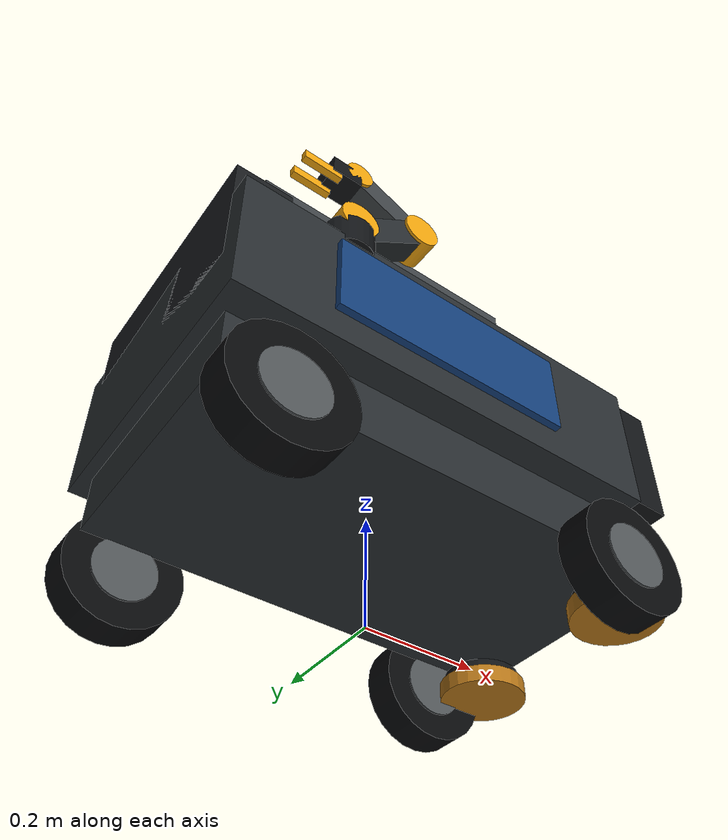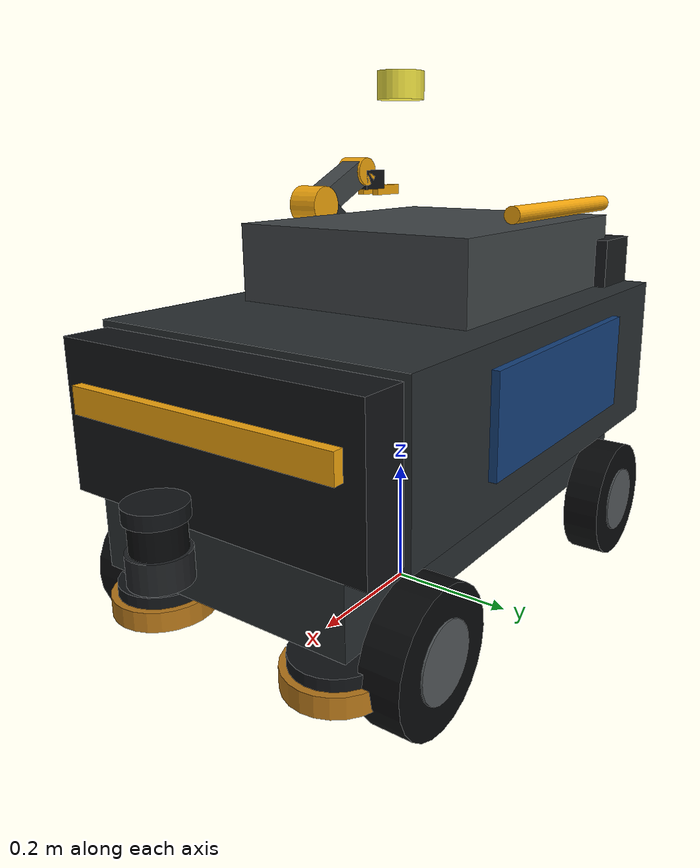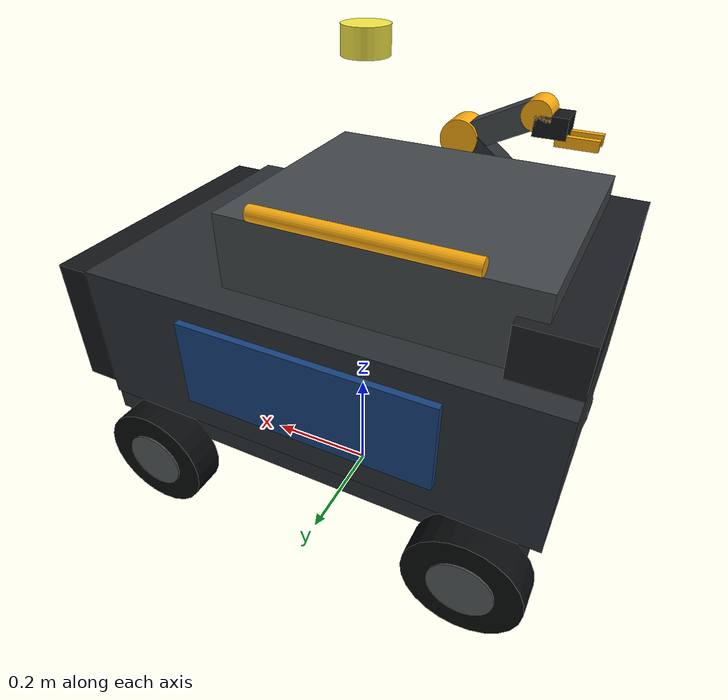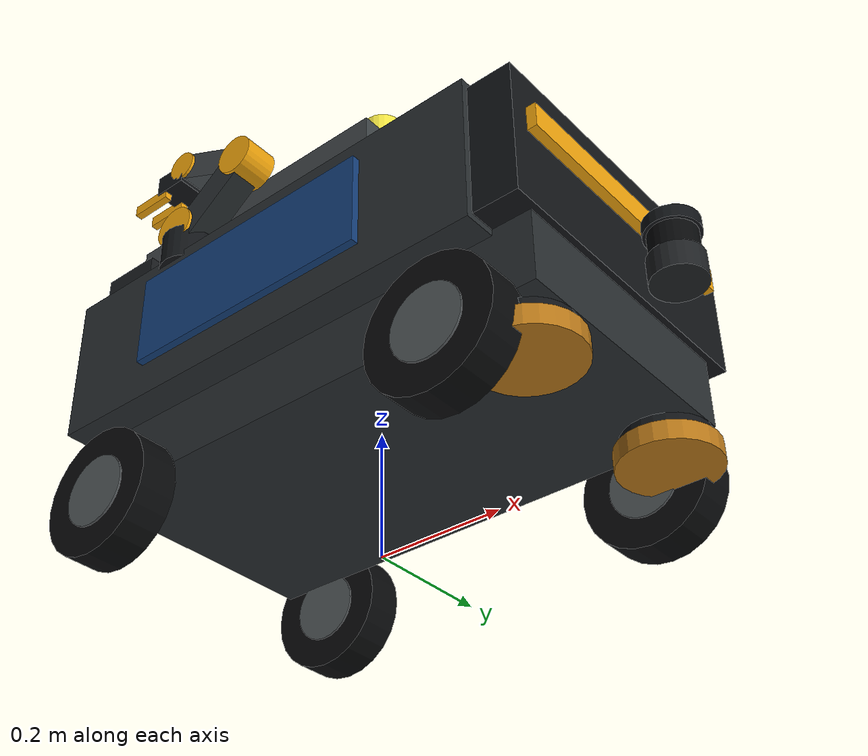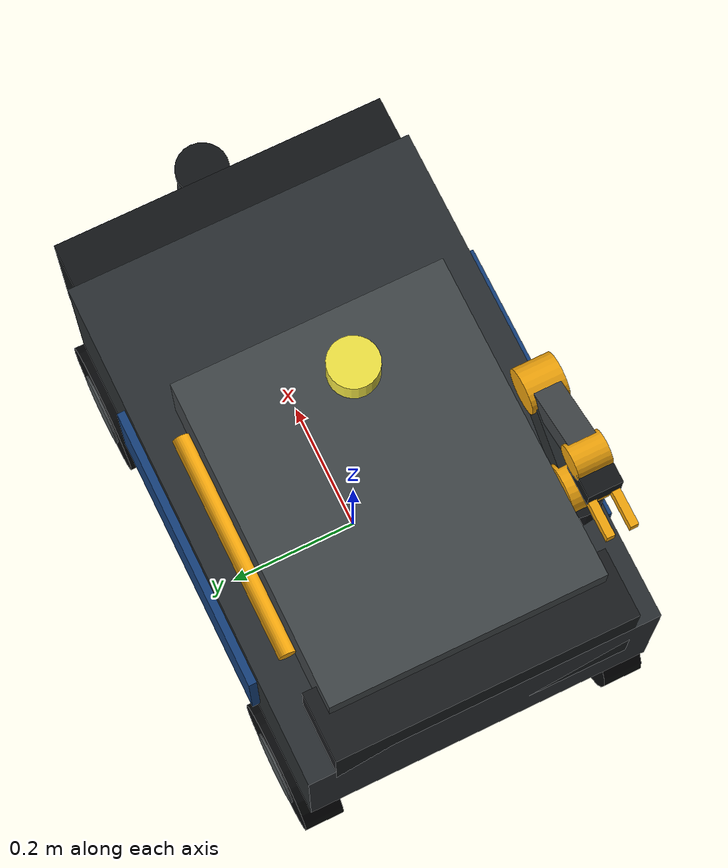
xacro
<?xml version="1.0"?>
<robot xmlns:xacro="http://www.ros.org/wiki/xacro" name="cleannav_ackermann">
  <xacro:arg name="controllers_file" default="config/ackermann_controllers.yaml"/>
  <xacro:arg name="cmd_vel_topic" default="/cmd_vel"/>

  <!-- Simulation-only sensor A/B overrides; defaults preserve the frozen sensor. -->
  <xacro:arg name="sim_lidar_samples" default="181"/>
  <xacro:arg name="sim_lidar_rate" default="8"/>

  <!-- SIMULATION_PLACEHOLDER — replace after real chassis measurement. -->
  <!-- 控制器 YAML 中的五项几何参数必须与本区同名属性保持一致。 -->
  <xacro:property name="wheelbase" value="0.60"/>
  <xacro:property name="front_wheel_track" value="0.48"/>
  <xacro:property name="rear_wheel_track" value="0.48"/>
  <xacro:property name="front_wheel_radius" value="0.10"/>
  <xacro:property name="rear_wheel_radius" value="0.10"/>
  <xacro:property name="wheel_width" value="0.06"/>
  <xacro:property name="chassis_length" value="0.85"/>
  <xacro:property name="chassis_width" value="0.42"/>
  <xacro:property name="chassis_height" value="0.18"/>
  <xacro:property name="chassis_z" value="0.22"/>
  <xacro:property name="chassis_mass" value="20.0"/>
  <xacro:property name="wheel_mass" value="1.0"/>
  <xacro:property name="steering_limit" value="0.60"/>
  <!-- SIMULATION_PLACEHOLDER — replace after real chassis/sensor measurement. -->
  <xacro:property name="base_scan_x" value="0.50"/>
  <xacro:property name="base_scan_y" value="0.0"/>
  <xacro:property name="base_scan_z" value="0.28"/>
  <xacro:property name="lidar_radius" value="0.035"/>
  <xacro:property name="lidar_height" value="0.04"/>

  <link name="base_footprint"/>

  <link name="base_link">
    <!-- All colors are inline so each visual keeps its own Gazebo color. -->
    <visual name="cleaner_lower_chassis">
      <origin xyz="0.02 0 ${chassis_z}" rpy="0 0 0"/>
      <geometry>
        <box size="0.80 0.42 0.16"/>
      </geometry>
      <material name="cleaner_lower_chassis_material">
        <color rgba="0.16 0.18 0.19 1.0"/>
      </material>
    </visual>
    <!-- Demo-only industrial body envelope; visuals have no collision. -->
    <visual name="cleaner_main_body_shell">
      <origin xyz="-0.02 0.00 0.36" rpy="0 0 0"/>
      <geometry>
        <box size="0.76 0.52 0.24"/>
      </geometry>
      <material name="cleaner_main_body_material">
        <color rgba="0.16 0.18 0.19 1.0"/>
      </material>
    </visual>
    <visual name="cleaner_upper_equipment_compartment">
      <origin xyz="-0.10 0.00 0.51" rpy="0 0 0"/>
      <geometry>
        <box size="0.48 0.40 0.18"/>
      </geometry>
      <material name="cleaner_equipment_material">
        <color rgba="0.25 0.27 0.28 1.0"/>
      </material>
    </visual>
    <visual name="cleaner_rear_service_cap">
      <origin xyz="-0.35 0.00 0.45" rpy="0 0 0"/>
      <geometry>
        <box size="0.10 0.44 0.22"/>
      </geometry>
      <material name="cleaner_rear_service_cap_material">
        <color rgba="0.10 0.11 0.12 1.0"/>
      </material>
    </visual>
    <visual name="cleaner_front_fascia">
      <origin xyz="0.39 0.00 0.36" rpy="0 0 0"/>
      <geometry>
        <box size="0.08 0.50 0.22"/>
      </geometry>
      <material name="cleaner_front_fascia_material">
        <color rgba="0.07 0.08 0.09 1.0"/>
      </material>
    </visual>
    <visual name="cleaner_side_panel_left">
      <origin xyz="-0.03 0.266 0.37" rpy="0 0 0"/>
      <geometry>
        <box size="0.42 0.012 0.15"/>
      </geometry>
      <material name="cleaner_side_panel_left_material">
        <color rgba="0.08 0.25 0.48 1.0"/>
      </material>
    </visual>
    <visual name="cleaner_side_panel_right">
      <origin xyz="-0.03 -0.266 0.37" rpy="0 0 0"/>
      <geometry>
        <box size="0.42 0.012 0.15"/>
      </geometry>
      <material name="cleaner_side_panel_right_material">
        <color rgba="0.08 0.25 0.48 1.0"/>
      </material>
    </visual>
    <visual name="cleaner_front_safety_strip">
      <origin xyz="0.435 0.00 0.39" rpy="0 0 0"/>
      <geometry>
        <box size="0.02 0.44 0.04"/>
      </geometry>
      <material name="cleaner_front_safety_strip_material">
        <color rgba="0.95 0.65 0.05 1.0"/>
      </material>
    </visual>
    <visual name="cleaner_safety_rail_left">
      <origin xyz="-0.10 0.22 0.625" rpy="0 ${pi / 2} 0"/>
      <geometry>
        <cylinder radius="0.012" length="0.32"/>
      </geometry>
      <material name="cleaner_safety_rail_left_material">
        <color rgba="0.95 0.65 0.05 1.0"/>
      </material>
    </visual>
    <!-- Housing follows the immutable base_scan pose at (0.50, 0, 0.28). -->
    <visual name="cleaner_lidar_pedestal">
      <origin xyz="0.50 0.00 0.24" rpy="0 0 0"/>
      <geometry>
        <cylinder radius="0.040" length="0.040"/>
      </geometry>
      <material name="cleaner_lidar_pedestal_material">
        <color rgba="0.12 0.13 0.14 1.0"/>
      </material>
    </visual>
    <visual name="cleaner_lidar_top_cap">
      <origin xyz="0.50 0.00 0.31" rpy="0 0 0"/>
      <geometry>
        <cylinder radius="0.040" length="0.020"/>
      </geometry>
      <material name="cleaner_lidar_top_cap_material">
        <color rgba="0.07 0.08 0.09 1.0"/>
      </material>
    </visual>
    <visual name="cleaner_front_brush_left">
      <origin xyz="0.37 0.16 0.105" rpy="0 0 0"/>
      <geometry>
        <cylinder radius="0.065" length="0.025"/>
      </geometry>
      <material name="cleaner_front_brush_left_material">
        <color rgba="0.07 0.08 0.09 1.0"/>
      </material>
    </visual>
    <visual name="cleaner_front_brush_right">
      <origin xyz="0.37 -0.16 0.105" rpy="0 0 0"/>
      <geometry>
        <cylinder radius="0.065" length="0.025"/>
      </geometry>
      <material name="cleaner_front_brush_right_material">
        <color rgba="0.07 0.08 0.09 1.0"/>
      </material>
    </visual>
    <visual name="cleaner_front_bristles_left">
      <origin xyz="0.37 0.16 0.085" rpy="0 0 0"/>
      <geometry>
        <cylinder radius="0.075" length="0.030"/>
      </geometry>
      <material name="cleaner_front_bristles_left_material">
        <color rgba="0.72 0.47 0.10 1.0"/>
      </material>
    </visual>
    <visual name="cleaner_front_bristles_right">
      <origin xyz="0.37 -0.16 0.085" rpy="0 0 0"/>
      <geometry>
        <cylinder radius="0.075" length="0.030"/>
      </geometry>
      <material name="cleaner_front_bristles_right_material">
        <color rgba="0.72 0.47 0.10 1.0"/>
      </material>
    </visual>
    <!-- Folded visual-only industrial gripper arm on the right side. -->
    <visual name="cleaner_arm_base_pedestal">
      <origin xyz="-0.20 -0.225 0.50" rpy="0 0 0"/>
      <geometry>
        <cylinder radius="0.045" length="0.060"/>
      </geometry>
      <material name="cleaner_arm_base_material">
        <color rgba="0.07 0.08 0.09 1.0"/>
      </material>
    </visual>
    <visual name="cleaner_arm_shoulder_joint">
      <origin xyz="-0.20 -0.235 0.54" rpy="${pi / 2} 0 0"/>
      <geometry>
        <cylinder radius="0.035" length="0.055"/>
      </geometry>
      <material name="cleaner_arm_shoulder_material">
        <color rgba="0.95 0.65 0.05 1.0"/>
      </material>
    </visual>
    <visual name="cleaner_arm_upper_arm">
      <origin xyz="-0.14 -0.235 0.565" rpy="0 -0.65 0"/>
      <geometry>
        <box size="0.16 0.045 0.050"/>
      </geometry>
      <material name="cleaner_arm_upper_material">
        <color rgba="0.16 0.18 0.19 1.0"/>
      </material>
    </visual>
    <visual name="cleaner_arm_elbow_joint">
      <origin xyz="-0.075 -0.235 0.615" rpy="${pi / 2} 0 0"/>
      <geometry>
        <cylinder radius="0.033" length="0.055"/>
      </geometry>
      <material name="cleaner_arm_elbow_material">
        <color rgba="0.95 0.65 0.05 1.0"/>
      </material>
    </visual>
    <visual name="cleaner_arm_forearm">
      <origin xyz="-0.135 -0.235 0.64" rpy="0 0.45 0"/>
      <geometry>
        <box size="0.14 0.040 0.045"/>
      </geometry>
      <material name="cleaner_arm_forearm_material">
        <color rgba="0.25 0.27 0.28 1.0"/>
      </material>
    </visual>
    <visual name="cleaner_arm_wrist">
      <origin xyz="-0.20 -0.235 0.67" rpy="${pi / 2} 0 0"/>
      <geometry>
        <cylinder radius="0.025" length="0.050"/>
      </geometry>
      <material name="cleaner_arm_wrist_material">
        <color rgba="0.95 0.65 0.05 1.0"/>
      </material>
    </visual>
    <visual name="cleaner_arm_gripper_palm">
      <origin xyz="-0.225 -0.235 0.655" rpy="0 0 0"/>
      <geometry>
        <box size="0.055 0.050 0.035"/>
      </geometry>
      <material name="cleaner_arm_gripper_palm_material">
        <color rgba="0.07 0.08 0.09 1.0"/>
      </material>
    </visual>
    <visual name="cleaner_arm_gripper_finger_left">
      <origin xyz="-0.270 -0.252 0.635" rpy="0 0 0"/>
      <geometry>
        <box size="0.070 0.012 0.018"/>
      </geometry>
      <material name="cleaner_arm_gripper_finger_left_material">
        <color rgba="0.95 0.65 0.05 1.0"/>
      </material>
    </visual>
    <visual name="cleaner_arm_gripper_finger_right">
      <origin xyz="-0.270 -0.218 0.635" rpy="0 0 0"/>
      <geometry>
        <box size="0.070 0.012 0.018"/>
      </geometry>
      <material name="cleaner_arm_gripper_finger_right_material">
        <color rgba="0.95 0.65 0.05 1.0"/>
      </material>
    </visual>
    <collision>
      <origin xyz="0 0 ${chassis_z}" rpy="0 0 0"/>
      <geometry>
        <box size="${chassis_length} ${chassis_width} ${chassis_height}"/>
      </geometry>
    </collision>
    <inertial>
      <origin xyz="0 0 ${chassis_z}" rpy="0 0 0"/>
      <mass value="${chassis_mass}"/>
      <inertia ixx="0.348" ixy="0" ixz="0" iyy="1.258" iyz="0" izz="1.498"/>
    </inertial>
  </link>

  <joint name="base_footprint_to_base_link" type="fixed">
    <parent link="base_footprint"/>
    <child link="base_link"/>
  </joint>

  <!-- SIMULATION_PLACEHOLDER — replace after real chassis/sensor measurement. -->
  <!-- 该位姿仅用于 V1 仿真，不代表真实 LiDAR 安装位置。 -->
  <link name="base_scan">
    <visual name="cleannav_lidar_sensor">
      <geometry>
        <cylinder radius="${lidar_radius}" length="${lidar_height}"/>
      </geometry>
      <material name="cleannav_lidar_sensor_material">
        <color rgba="0.03 0.035 0.04 1.0"/>
      </material>
    </visual>
    <collision>
      <geometry>
        <cylinder radius="${lidar_radius}" length="${lidar_height}"/>
      </geometry>
    </collision>
    <inertial>
      <mass value="0.10"/>
      <inertia ixx="0.00004" ixy="0" ixz="0" iyy="0.00004" iyz="0" izz="0.00006"/>
    </inertial>
  </link>

  <joint name="base_link_to_base_scan" type="fixed">
    <origin xyz="${base_scan_x} ${base_scan_y} ${base_scan_z}" rpy="0 0 0"/>
    <parent link="base_link"/>
    <child link="base_scan"/>
  </joint>

  <!-- Independent roof-mounted scan for mapping; the front /scan is unchanged. -->
  <link name="mapping_lidar_link">
    <inertial>
      <mass value="0.10"/>
      <inertia ixx="0.0001" ixy="0" ixz="0" iyy="0.0001" iyz="0" izz="0.0001"/>
    </inertial>
    <visual>
      <geometry><cylinder radius="0.035" length="0.04"/></geometry>
    </visual>
    <collision>
      <geometry><cylinder radius="0.035" length="0.04"/></geometry>
    </collision>
  </link>
  <joint name="mapping_lidar_mount" type="fixed">
    <parent link="base_link"/>
    <child link="mapping_lidar_link"/>
    <origin xyz="0 0 0.80" rpy="0 0 0"/>
  </joint>

  <xacro:macro name="wheel_link" params="name radius">
    <link name="${name}">
      <visual name="${name}_tire">
        <origin xyz="0 0 0" rpy="${pi / 2} 0 0"/>
        <geometry>
          <cylinder radius="${radius}" length="${wheel_width}"/>
        </geometry>
        <material name="${name}_tire_material">
          <color rgba="0.035 0.040 0.045 1.0"/>
        </material>
      </visual>
      <visual name="${name}_hub">
        <origin xyz="0 0 0" rpy="${pi / 2} 0 0"/>
        <geometry>
          <cylinder radius="0.055" length="0.066"/>
        </geometry>
        <material name="${name}_hub_material">
          <color rgba="0.32 0.34 0.35 1.0"/>
        </material>
      </visual>
      <collision>
        <origin xyz="0 0 0" rpy="${pi / 2} 0 0"/>
        <geometry>
          <cylinder radius="${radius}" length="${wheel_width}"/>
        </geometry>
      </collision>
      <inertial>
        <mass value="${wheel_mass}"/>
        <inertia ixx="0.0028" ixy="0" ixz="0" iyy="0.005" iyz="0" izz="0.0028"/>
      </inertial>
    </link>
  </xacro:macro>

  <xacro:wheel_link name="front_left_wheel_link" radius="${front_wheel_radius}"/>
  <xacro:wheel_link name="front_right_wheel_link" radius="${front_wheel_radius}"/>
  <xacro:wheel_link name="rear_left_wheel_link" radius="${rear_wheel_radius}"/>
  <xacro:wheel_link name="rear_right_wheel_link" radius="${rear_wheel_radius}"/>

  <!-- SIMULATION_PLACEHOLDER — replace after real chassis measurement. -->
  <!-- 转向节仅承载前轮转向与被动滚动两级关节，不代表实车结构尺寸。 -->
  <xacro:macro name="steering_knuckle_link" params="name">
    <link name="${name}">
      <inertial>
        <mass value="0.05"/>
        <inertia ixx="0.00001" ixy="0" ixz="0" iyy="0.00001" iyz="0" izz="0.00001"/>
      </inertial>
    </link>
  </xacro:macro>

  <xacro:steering_knuckle_link name="front_left_steering_link"/>
  <xacro:steering_knuckle_link name="front_right_steering_link"/>

  <joint name="front_left_steering_joint" type="revolute">
    <origin xyz="${wheelbase / 2} ${front_wheel_track / 2} ${front_wheel_radius}" rpy="0 0 0"/>
    <parent link="base_link"/>
    <child link="front_left_steering_link"/>
    <axis xyz="0 0 1"/>
    <limit lower="-${steering_limit}" upper="${steering_limit}" effort="50.0" velocity="1.5"/>
    <dynamics damping="0.4" friction="0.1"/>
  </joint>

  <joint name="front_left_wheel_joint" type="continuous">
    <parent link="front_left_steering_link"/>
    <child link="front_left_wheel_link"/>
    <axis xyz="0 1 0"/>
    <limit effort="50.0" velocity="12.0"/>
    <dynamics damping="0.01" friction="0.0"/>
  </joint>

  <joint name="front_right_steering_joint" type="revolute">
    <origin xyz="${wheelbase / 2} -${front_wheel_track / 2} ${front_wheel_radius}" rpy="0 0 0"/>
    <parent link="base_link"/>
    <child link="front_right_steering_link"/>
    <axis xyz="0 0 1"/>
    <limit lower="-${steering_limit}" upper="${steering_limit}" effort="50.0" velocity="1.5"/>
    <dynamics damping="0.4" friction="0.1"/>
  </joint>

  <joint name="front_right_wheel_joint" type="continuous">
    <parent link="front_right_steering_link"/>
    <child link="front_right_wheel_link"/>
    <axis xyz="0 1 0"/>
    <limit effort="50.0" velocity="12.0"/>
    <dynamics damping="0.01" friction="0.0"/>
  </joint>

  <joint name="rear_left_wheel_joint" type="continuous">
    <origin xyz="-${wheelbase / 2} ${rear_wheel_track / 2} ${rear_wheel_radius}" rpy="0 0 0"/>
    <parent link="base_link"/>
    <child link="rear_left_wheel_link"/>
    <axis xyz="0 1 0"/>
    <limit effort="50.0" velocity="12.0"/>
    <dynamics damping="0.1" friction="0.0"/>
  </joint>

  <joint name="rear_right_wheel_joint" type="continuous">
    <origin xyz="-${wheelbase / 2} -${rear_wheel_track / 2} ${rear_wheel_radius}" rpy="0 0 0"/>
    <parent link="base_link"/>
    <child link="rear_right_wheel_link"/>
    <axis xyz="0 1 0"/>
    <limit effort="50.0" velocity="12.0"/>
    <dynamics damping="0.1" friction="0.0"/>
  </joint>

  <ros2_control name="GazeboSystem" type="system">
    <hardware>
      <plugin>gazebo_ros2_control/GazeboSystem</plugin>
    </hardware>
    <joint name="front_left_steering_joint">
      <command_interface name="position">
        <param name="min">-${steering_limit}</param>
        <param name="max">${steering_limit}</param>
      </command_interface>
      <state_interface name="position"/>
      <state_interface name="velocity"/>
    </joint>
    <joint name="front_right_steering_joint">
      <command_interface name="position">
        <param name="min">-${steering_limit}</param>
        <param name="max">${steering_limit}</param>
      </command_interface>
      <state_interface name="position"/>
      <state_interface name="velocity"/>
    </joint>
    <joint name="front_left_wheel_joint">
      <state_interface name="position"/>
      <state_interface name="velocity"/>
    </joint>
    <joint name="front_right_wheel_joint">
      <state_interface name="position"/>
      <state_interface name="velocity"/>
    </joint>
    <joint name="rear_left_wheel_joint">
      <command_interface name="velocity"/>
      <state_interface name="position"/>
      <state_interface name="velocity"/>
    </joint>
    <joint name="rear_right_wheel_joint">
      <command_interface name="velocity"/>
      <state_interface name="position"/>
      <state_interface name="velocity"/>
    </joint>
  </ros2_control>

  <!-- Gazebo Classic needs link-scoped material scripts for stable colors. -->
  <gazebo reference="base_link">
    <material>Gazebo/DarkGrey</material>
  </gazebo>
  <!-- Gazebo Classic fixed-joint lumping renders base_link as base_footprint. -->
  <gazebo reference="base_footprint">
    <material>Gazebo/DarkGrey</material>
  </gazebo>
  <gazebo reference="base_scan">
    <material>Gazebo/Black</material>
  </gazebo>
  <gazebo reference="front_left_wheel_link">
    <material>Gazebo/Black</material>
  </gazebo>
  <gazebo reference="front_right_wheel_link">
    <material>Gazebo/Black</material>
  </gazebo>
  <gazebo reference="rear_left_wheel_link">
    <material>Gazebo/Black</material>
  </gazebo>
  <gazebo reference="rear_right_wheel_link">
    <material>Gazebo/Black</material>
  </gazebo>

  <!-- SIMULATION_PLACEHOLDER：V1 低负载 LiDAR，不代表最终实车传感器规格。 -->
  <gazebo reference="base_scan">
    <sensor name="cleannav_lidar" type="ray">
      <always_on>true</always_on>
      <visualize>false</visualize>
      <update_rate>$(arg sim_lidar_rate)</update_rate>
      <ray>
        <scan>
          <horizontal>
            <samples>$(arg sim_lidar_samples)</samples>
            <resolution>1.0</resolution>
            <min_angle>-${pi / 2}</min_angle>
            <max_angle>${pi / 2}</max_angle>
          </horizontal>
        </scan>
        <range>
          <min>0.12</min>
          <max>10.0</max>
          <resolution>0.01</resolution>
        </range>
        <noise>
          <type>gaussian</type>
          <mean>0.0</mean>
          <stddev>0.005</stddev>
        </noise>
      </ray>
      <plugin name="cleannav_laser_scan" filename="libgazebo_ros_ray_sensor.so">
        <ros>
          <remapping>~/out:=scan_raw</remapping>
        </ros>
        <output_type>sensor_msgs/LaserScan</output_type>
        <frame_name>base_scan</frame_name>
      </plugin>
      <!-- Entity-aware self returns are invalid measurements, never free rays.
           Keep the standard plugin's unmodified scan available for diagnostics. -->
      <plugin name="cleannav_laser_self_filter" filename="libcleannav_laser_self_filter.so">
        <ros><remapping>~/out:=scan</remapping></ros>
        <frame_name>base_scan</frame_name>
        <robot_name>cleannav_ackermann</robot_name>
      </plugin>
    </sensor>
  </gazebo>

  <gazebo>
    <plugin name="gazebo_ros2_control" filename="libgazebo_ros2_control.so">
      <parameters>$(arg controllers_file)</parameters>
      <ros>
        <remapping>ackermann_controller/reference_unstamped:=$(arg cmd_vel_topic)</remapping>
        <remapping>ackermann_controller/odometry:=odom</remapping>
        <remapping>ackermann_controller/tf_odometry:=tf</remapping>
      </ros>
    </plugin>
  </gazebo>

  <!-- 360 unique 1-degree directions; the +pi endpoint is intentionally omitted. -->
  <gazebo reference="mapping_lidar_link">
    <sensor name="mapping_roof_lidar" type="ray">
      <always_on>true</always_on>
      <visualize>false</visualize>
      <update_rate>8</update_rate>
      <ray>
        <scan>
          <horizontal>
            <samples>360</samples>
            <resolution>1.0</resolution>
            <min_angle>-${pi}</min_angle>
            <max_angle>${pi - 2*pi/360}</max_angle>
          </horizontal>
        </scan>
        <range>
          <min>0.12</min>
          <max>10.0</max>
          <resolution>0.01</resolution>
        </range>
        <noise>
          <type>gaussian</type>
          <mean>0.0</mean>
          <stddev>0.005</stddev>
        </noise>
      </ray>
      <plugin name="mapping_roof_raw" filename="libgazebo_ros_ray_sensor.so">
        <ros><remapping>~/out:=/mapping/scan_raw</remapping></ros>
        <output_type>sensor_msgs/LaserScan</output_type>
        <frame_name>mapping_lidar_link</frame_name>
      </plugin>
      <plugin name="mapping_roof_self_filter" filename="libcleannav_laser_self_filter.so">
        <ros><remapping>~/out:=/mapping/scan</remapping></ros>
        <frame_name>mapping_lidar_link</frame_name>
        <robot_name>cleannav_ackermann</robot_name>
      </plugin>
    </sensor>
  </gazebo>
</robot>
